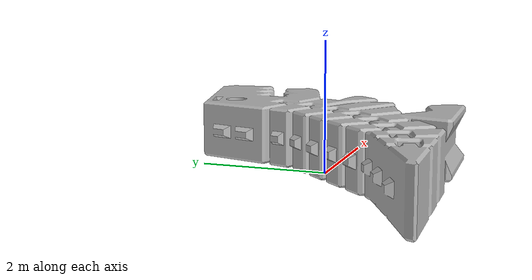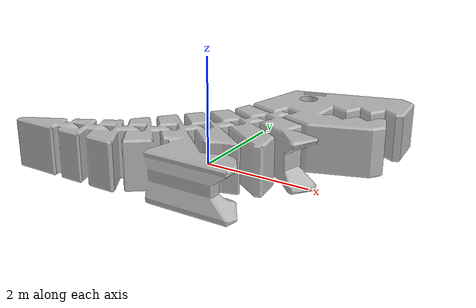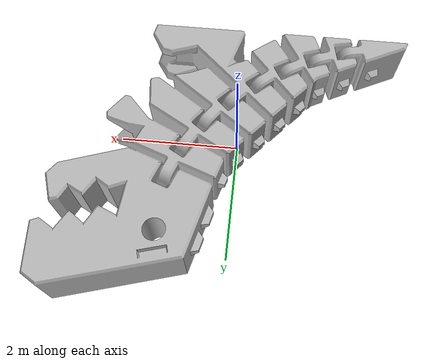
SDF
<?xml version='1.0'?>
<sdf version="1.5">
  <model name="test">
    <static>true</static>
    <link name="link">
    <collision name="collision">
        <pose>0 0 0 0 0 0</pose>
        <geometry>
            <mesh>
                <uri>model://test/meshes/test.dae</uri>
                <scale>0.07 0.07 0.07</scale>
            </mesh>
        </geometry>
    </collision>
    <visual name="visual">
        <pose>0 0 0 0 0 0</pose>
        <geometry>
            <mesh>
                <uri>model://test/meshes/test.dae</uri>
                <scale>0.07 0.07 0.07</scale>
            </mesh>
        </geometry>
    </visual>
    </link>
  </model>
</sdf>
